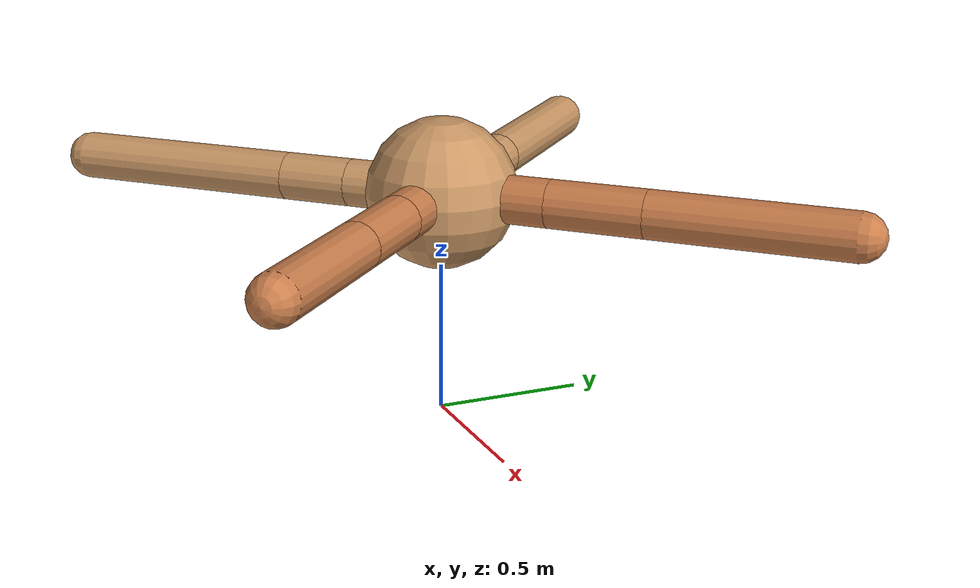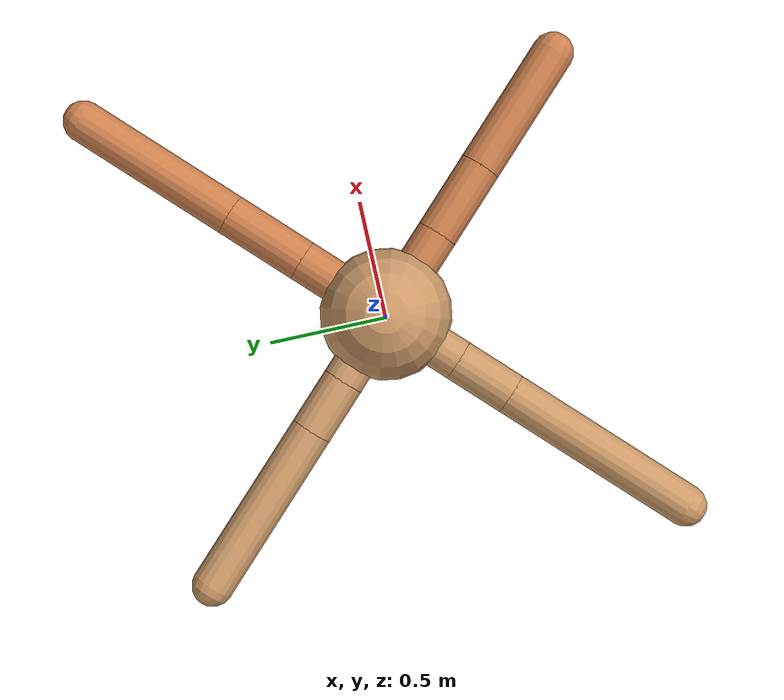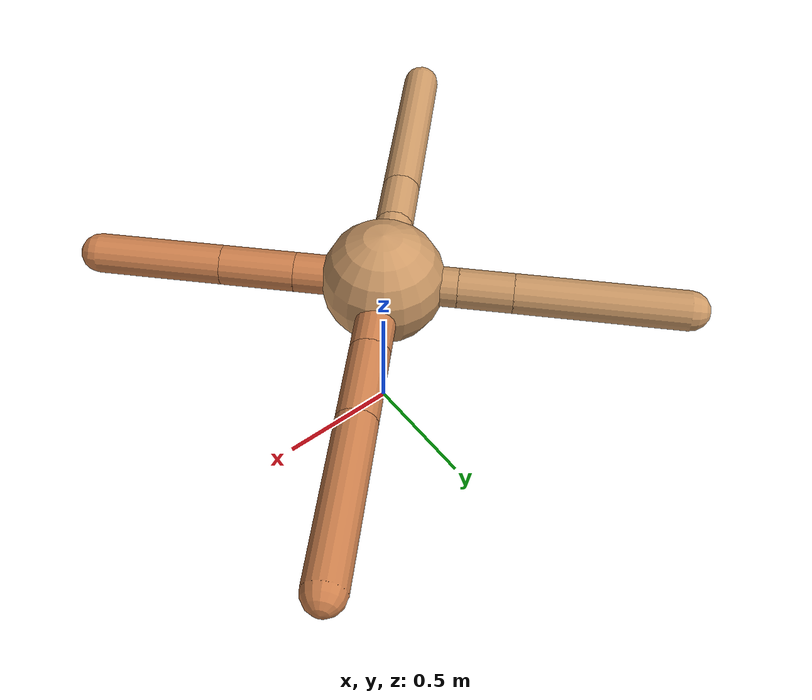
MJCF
<mujoco model="ant">
  <compiler angle="degree" coordinate="local" inertiafromgeom="true" />
  <option integrator="RK4" timestep="0.01" />
  <custom>
    <numeric data="0.0 0.0 0.55 1.0 0.0 0.0 0.0 0.0 1.0 0.0 -1.0 0.0 -1.0 0.0 1.0" name="init_qpos" />
  </custom>
  <default>
    <joint armature="1" damping="1" limited="true" />
    <geom conaffinity="0" condim="3" density="5.0" friction="1.5 0.1 0.1" margin="0.01" rgba="0.8 0.6 0.4 1" />
  </default>
  <worldbody>
    <body name="torso" pos="0 0 0.75">
      <geom name="torso_geom" pos="0 0 0" size="0.25" type="sphere" />

      <body name="front_left_leg" pos="0 0 0">
        <geom fromto="0.0 0.0 0.0 0.2631067571722238 0.2631067571722238 0.0" name="aux_1_geom" size="0.08" type="capsule" rgba=".8 .5 .3 1" />
        <body name="aux_1" pos="0.2631067571722238 0.2631067571722238 0.0">
          <joint axis="0 0 1" name="hip_1" pos="0.0 0.0 0.0" range="-40 40" type="hinge" />
          <geom fromto="0.0 0.0 0.0 0.22666398395403953 0.22666398395403953 0.0" name="left_leg_geom" size="0.08" type="capsule" rgba=".8 .5 .3 1" />
          <body pos="0.22666398395403953 0.22666398395403953 0.0" name="front_left_foot">
            <joint axis="-1 1 0" name="ankle_1" pos="0.0 0.0 0.0" range="30 100" type="hinge" />
            <geom fromto="0.0 0.0 0.0 0.46395252766535067 0.46395252766535067 0.0" name="left_ankle_geom" size="0.08" type="capsule" rgba=".8 .5 .3 1" />
          </body>
        </body>
      </body>
      <body name="front_right_leg" pos="0 0 0">
        <geom fromto="0.0 0.0 0.0 -0.21119722190852244 0.21119722190852244 0.0" name="aux_2_geom" size="0.08" type="capsule" />
        <body name="aux_2" pos="-0.21119722190852244 0.21119722190852244 0.0">
          <joint axis="0 0 1" name="hip_2" pos="0.0 0.0 0.0" range="-40 40" type="hinge" />
          <geom fromto="0.0 0.0 0.0 -0.15602881288730652 0.15602881288730652 0.0" name="right_leg_geom" size="0.08" type="capsule" />
          <body pos="-0.15602881288730652 0.15602881288730652 0.0" name="front_right_foot">
            <joint axis="1 1 0" name="ankle_2" pos="0.0 0.0 0.0" range="-100 -30" type="hinge" />
            <geom fromto="0.0 0.0 0.0 -0.4852951688305176 0.4852951688305176 0.0" name="right_ankle_geom" size="0.08" type="capsule" />
          </body>
        </body>
      </body>
      <body name="left_back_leg" pos="0 0 0">
        <geom fromto="0.0 0.0 0.0 -0.2277762883744671 -0.2277762883744671 0.0" name="aux_3_geom" size="0.08" type="capsule" />
        <body name="aux_3" pos="-0.2277762883744671 -0.2277762883744671 0.0">
          <joint axis="0 0 1" name="hip_3" pos="0.0 0.0 0.0" range="-40 40" type="hinge" />
          <geom fromto="0.0 0.0 0.0 -0.16449217560804946 -0.16449217560804946 0.0" name="back_leg_geom" size="0.08" type="capsule" />
          <body pos="-0.16449217560804946 -0.16449217560804946 0.0" name="left_back_foot">
            <joint axis="-1 1 0" name="ankle_3" pos="0.0 0.0 0.0" range="-100 -30" type="hinge" />
            <geom fromto="0.0 0.0 0.0 -0.5500250294962499 -0.5500250294962499 0.0" name="third_ankle_geom" size="0.08" type="capsule" />
          </body>
        </body>
      </body>
      <body name="right_back_leg" pos="0 0 0">
        <geom fromto="0.0 0.0 0.0 0.25228508141971634 -0.25228508141971634 0.0" name="aux_4_geom" size="0.08" type="capsule" rgba=".8 .5 .3 1" />
        <body name="aux_4" pos="0.25228508141971634 -0.25228508141971634 0.0">
          <joint axis="0 0 1" name="hip_4" pos="0.0 0.0 0.0" range="-40 40" type="hinge" />
          <geom fromto="0.0 0.0 0.0 0.21294712645097627 -0.21294712645097627 0.0" name="rightback_leg_geom" size="0.08" type="capsule" rgba=".8 .5 .3 1" />
          <body pos="0.21294712645097627 -0.21294712645097627 0.0" name="right_back_foot">
            <joint axis="1 1 0" name="ankle_4" pos="0.0 0.0 0.0" range="30 100" type="hinge" />
            <geom fromto="0.0 0.0 0.0 0.3608084294920851 -0.3608084294920851 0.0" name="fourth_ankle_geom" size="0.08" type="capsule" rgba=".8 .5 .3 1" />
          </body>
        </body>
      </body>
    </body>
  </worldbody>
  <actuator>
    <motor ctrllimited="true" ctrlrange="-1.0 1.0" joint="hip_4" gear="150" />
    <motor ctrllimited="true" ctrlrange="-1.0 1.0" joint="ankle_4" gear="150" />
    <motor ctrllimited="true" ctrlrange="-1.0 1.0" joint="hip_1" gear="150" />
    <motor ctrllimited="true" ctrlrange="-1.0 1.0" joint="ankle_1" gear="150" />
    <motor ctrllimited="true" ctrlrange="-1.0 1.0" joint="hip_2" gear="150" />
    <motor ctrllimited="true" ctrlrange="-1.0 1.0" joint="ankle_2" gear="150" />
    <motor ctrllimited="true" ctrlrange="-1.0 1.0" joint="hip_3" gear="150" />
    <motor ctrllimited="true" ctrlrange="-1.0 1.0" joint="ankle_3" gear="150" />
  </actuator>
</mujoco>
